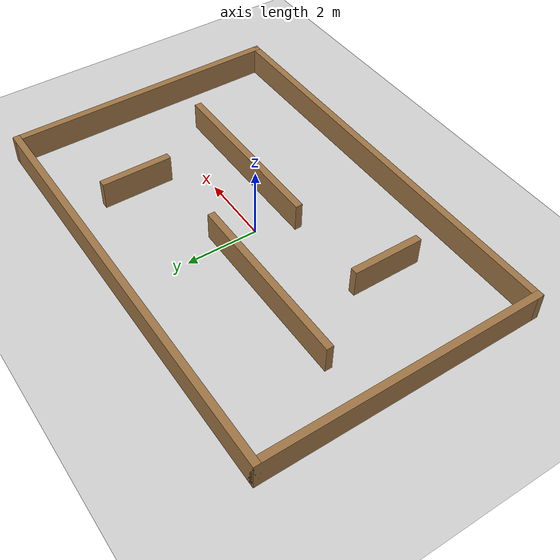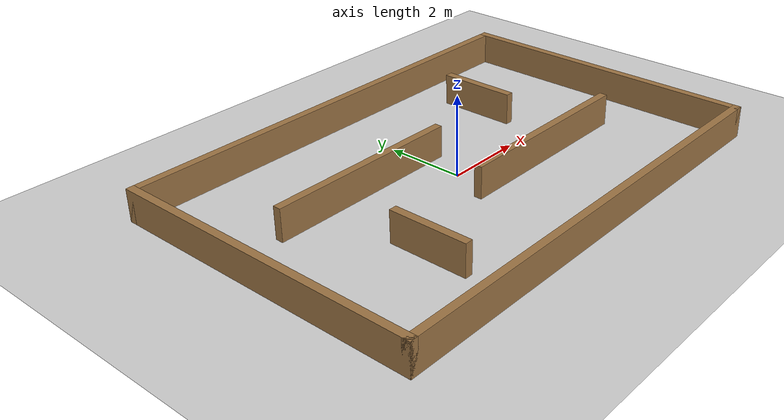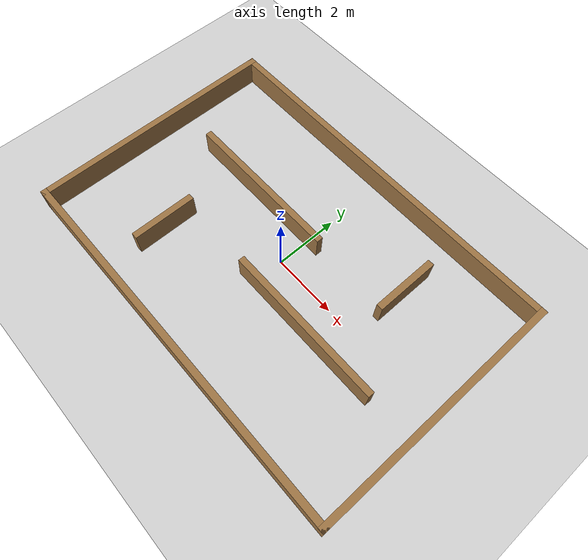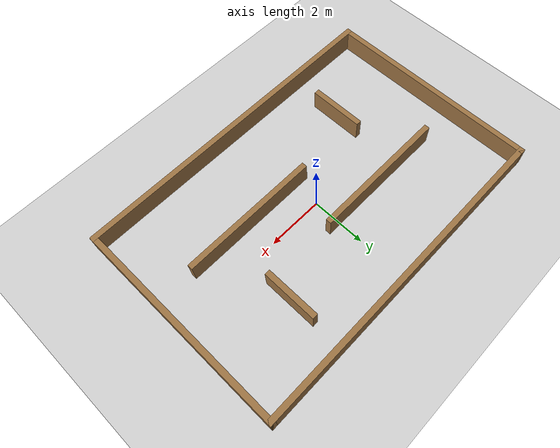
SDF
<?xml version="1.0"?>
<sdf version="1.8">
  <world name="corridor">
    <physics name="accurate_1ms" type="ode">
      <real_time_update_rate>1000.0</real_time_update_rate>
      <max_step_size>0.001</max_step_size>
      <real_time_factor>1.0</real_time_factor>
      <ode>
        <solver>
          <type>quick</type>
          <iters>150</iters>
          <sor>1.4</sor>
          <use_dynamic_moi_rescaling>true</use_dynamic_moi_rescaling>
        </solver>
        <constraints>
          <cfm>0.00001</cfm>
          <erp>0.2</erp>
          <contact_max_correcting_vel>2000.0</contact_max_correcting_vel>
          <contact_surface_layer>0.01</contact_surface_layer>
        </constraints>
      </ode>
    </physics>

    <plugin filename="gz-sim-physics-system"
            name="gz::sim::systems::Physics"/>
    <plugin filename="gz-sim-user-commands-system"
            name="gz::sim::systems::UserCommands"/>
    <plugin filename="gz-sim-scene-broadcaster-system"
            name="gz::sim::systems::SceneBroadcaster"/>
    <plugin filename="gz-sim-sensors-system"
            name="gz::sim::systems::Sensors">
      <render_engine>ogre2</render_engine>
    </plugin>
    <plugin filename="gz-sim-imu-system"
            name="gz::sim::systems::Imu"/>

    <gravity>0 0 -9.8</gravity>
    <scene>
      <ambient>0.7 0.7 0.7 1</ambient>
      <background>0.85 0.9 0.95 1</background>
      <shadows>true</shadows>
    </scene>
    <light name="sun" type="directional">
      <cast_shadows>true</cast_shadows>
      <pose>0 0 10 0 0 0</pose>
      <diffuse>0.9 0.9 0.9 1</diffuse>
      <specular>0.2 0.2 0.2 1</specular>
      <direction>-0.5 0.2 -0.9</direction>
    </light>

    <model name="ground_plane">
      <static>true</static>
      <link name="ground_link">
        <collision name="ground_collision">
          <geometry>
            <plane>
              <normal>0 0 1</normal>
              <size>12 8</size>
            </plane>
          </geometry>
          <surface>
            <friction><ode><mu>1.0</mu><mu2>1.0</mu2></ode></friction>
          </surface>
        </collision>
        <visual name="ground_visual">
          <geometry>
            <plane>
              <normal>0 0 1</normal>
              <size>12 8</size>
            </plane>
          </geometry>
          <material>
            <ambient>0.72 0.72 0.72 1</ambient>
            <diffuse>0.82 0.82 0.82 1</diffuse>
          </material>
        </visual>
      </link>
    </model>

    <model name="arena_geometry">
      <static>true</static>
      <link name="geometry_link">
      <collision name="north_wall_collision">
        <pose>0 3.9 0.4 0 0 0</pose>
        <geometry><box><size>12 0.2 0.8</size></box></geometry>
      </collision>
      <visual name="north_wall_visual">
        <pose>0 3.9 0.4 0 0 0</pose>
        <geometry><box><size>12 0.2 0.8</size></box></geometry>
        <material>
          <ambient>0.62 0.46 0.27 1</ambient>
          <diffuse>0.62 0.46 0.27 1</diffuse>
        </material>
      </visual>
      <collision name="south_wall_collision">
        <pose>0 -3.9 0.4 0 0 0</pose>
        <geometry><box><size>12 0.2 0.8</size></box></geometry>
      </collision>
      <visual name="south_wall_visual">
        <pose>0 -3.9 0.4 0 0 0</pose>
        <geometry><box><size>12 0.2 0.8</size></box></geometry>
        <material>
          <ambient>0.62 0.46 0.27 1</ambient>
          <diffuse>0.62 0.46 0.27 1</diffuse>
        </material>
      </visual>
      <collision name="east_wall_collision">
        <pose>5.9 0 0.4 0 0 0</pose>
        <geometry><box><size>0.2 8 0.8</size></box></geometry>
      </collision>
      <visual name="east_wall_visual">
        <pose>5.9 0 0.4 0 0 0</pose>
        <geometry><box><size>0.2 8 0.8</size></box></geometry>
        <material>
          <ambient>0.62 0.46 0.27 1</ambient>
          <diffuse>0.62 0.46 0.27 1</diffuse>
        </material>
      </visual>
      <collision name="west_wall_collision">
        <pose>-5.9 0 0.4 0 0 0</pose>
        <geometry><box><size>0.2 8 0.8</size></box></geometry>
      </collision>
      <visual name="west_wall_visual">
        <pose>-5.9 0 0.4 0 0 0</pose>
        <geometry><box><size>0.2 8 0.8</size></box></geometry>
        <material>
          <ambient>0.62 0.46 0.27 1</ambient>
          <diffuse>0.62 0.46 0.27 1</diffuse>
        </material>
      </visual>
      <collision name="north_stagger_collision">
        <pose>-2 1 0.4 0 0 0</pose>
        <geometry><box><size>5 0.2 0.8</size></box></geometry>
      </collision>
      <visual name="north_stagger_visual">
        <pose>-2 1 0.4 0 0 0</pose>
        <geometry><box><size>5 0.2 0.8</size></box></geometry>
        <material>
          <ambient>0.62 0.46 0.27 1</ambient>
          <diffuse>0.62 0.46 0.27 1</diffuse>
        </material>
      </visual>
      <collision name="south_stagger_collision">
        <pose>2 -1 0.4 0 0 0</pose>
        <geometry><box><size>5 0.2 0.8</size></box></geometry>
      </collision>
      <visual name="south_stagger_visual">
        <pose>2 -1 0.4 0 0 0</pose>
        <geometry><box><size>5 0.2 0.8</size></box></geometry>
        <material>
          <ambient>0.62 0.46 0.27 1</ambient>
          <diffuse>0.62 0.46 0.27 1</diffuse>
        </material>
      </visual>
      <collision name="west_gate_collision">
        <pose>-3 -1.8 0.4 0 0 0</pose>
        <geometry><box><size>0.2 2 0.8</size></box></geometry>
      </collision>
      <visual name="west_gate_visual">
        <pose>-3 -1.8 0.4 0 0 0</pose>
        <geometry><box><size>0.2 2 0.8</size></box></geometry>
        <material>
          <ambient>0.62 0.46 0.27 1</ambient>
          <diffuse>0.62 0.46 0.27 1</diffuse>
        </material>
      </visual>
      <collision name="east_gate_collision">
        <pose>3 1.8 0.4 0 0 0</pose>
        <geometry><box><size>0.2 2 0.8</size></box></geometry>
      </collision>
      <visual name="east_gate_visual">
        <pose>3 1.8 0.4 0 0 0</pose>
        <geometry><box><size>0.2 2 0.8</size></box></geometry>
        <material>
          <ambient>0.62 0.46 0.27 1</ambient>
          <diffuse>0.62 0.46 0.27 1</diffuse>
        </material>
      </visual>
      </link>
    </model>
  </world>
</sdf>
